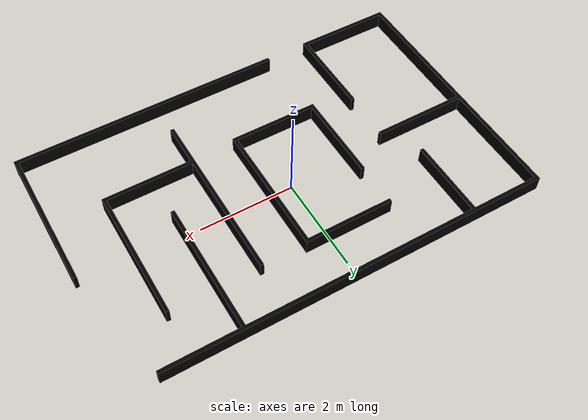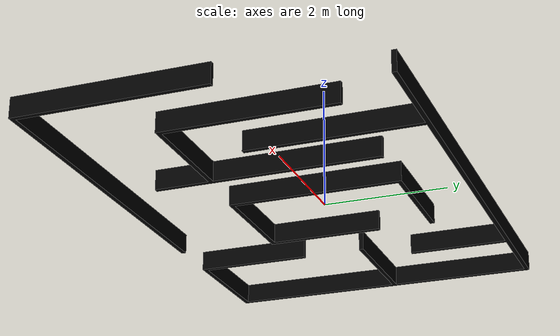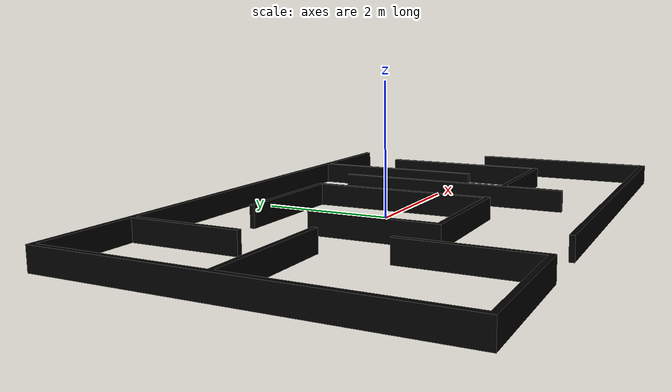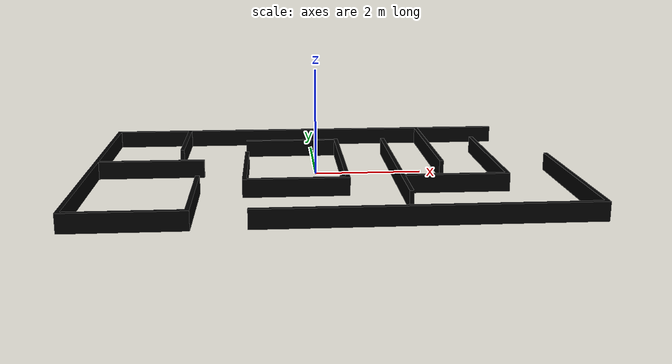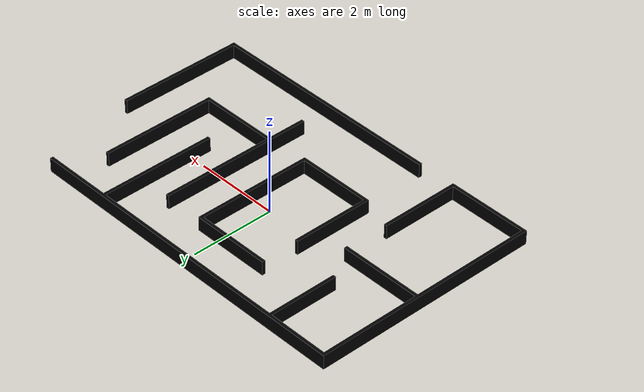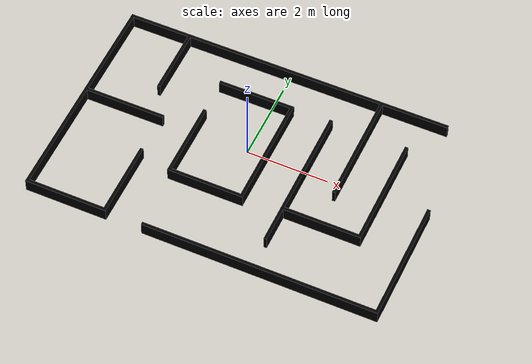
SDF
<?xml version="1.0"?>
<sdf version="1.5">
  <model name="ee484_maze">
    <pose>0.0 0.0 0 0 0 0</pose>
    <static>true</static>

    <link name="exterior_link">
      <collision name="base">
        <geometry>
          <mesh>
            <scale>1.5 1.5 1</scale>
            <uri>model://ee484_maze/meshes/ee484_maze.dae</uri>
          </mesh>
        </geometry>
      </collision>
      <visual name="visual">
        <geometry>
          <mesh>
            <scale>1.5 1.5 1</scale>
            <uri>model://ee484_maze/meshes/ee484_maze.dae</uri>
          </mesh>
        </geometry>
      </visual>
    </link>

  </model>
</sdf>
